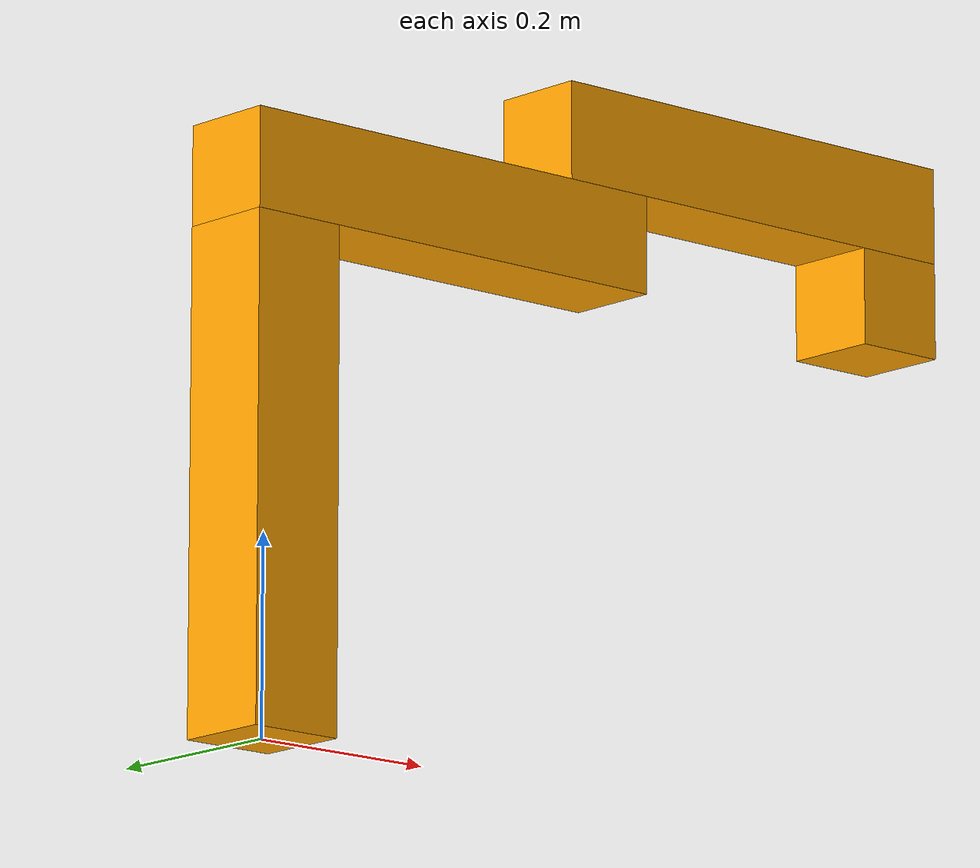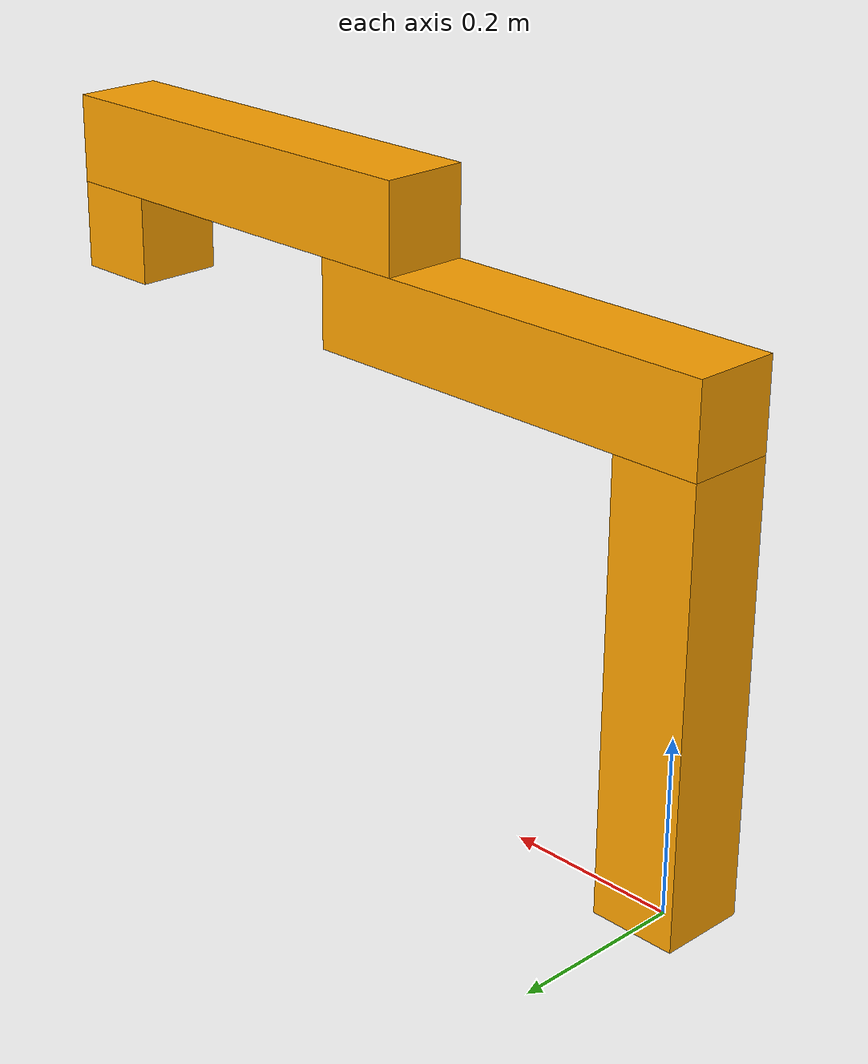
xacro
<?xml version="1.0"?>
<robot name="robot" xmlns:xacro="http://ros.org/wiki/xacro">

  <xacro:property name="height1" value="0.5" />
  <xacro:property name="height2" value="0.5" />
  <xacro:property name="height3" value="0.5" />
  <xacro:property name="length" value="0.1" />
  <xacro:property name="width" value="0.1" />
  <xacro:property name="mass" value="1" />
  <xacro:property name="axel_offset" value="0.05" />
  <xacro:property name="leglen" value="0.6" />
  <xacro:property name="polelen" value="0.2" />
  <xacro:property name="bodylen" value="0.6" />
  <xacro:property name="baselen" value="0.4" />
  <xacro:property name="wheeldiam" value="0.07" />
  <xacro:property name="pi" value="3.1415" />
  <xacro:include filename="$(find rbe500_group)/urdf/robot_color.gazebo" />

  <material name="blue">
    <color rgba="0 0 0.8 1"/>
  </material>

  <material name="red">
    <color rgba="1 0 0 1"/>
  </material>

  <material name="">
    <color rgba="1 0 0 1"/>
  </material>

  <material name="green">
    <color rgba="0 1 0 1"/>
  </material>

  <material name="orange">
    <color rgba="1 0.64 0 1"/>
  </material>

  <material name="black">
    <color rgba="0 0 0 1"/>
  </material>

  <material name="white">
    <color rgba="1 1 1 1"/>
  </material>

  <link name="world"/>

  <joint name="joint0" type="continuous">
    <parent link="world"/>
    <child link="link1"/>
    <axis xyz="0 0 1"/>
    <dynamics damping="0.7"/>
  </joint>

  <link name="link1">
    <collision>
      <origin xyz="0 0 ${height1/2}" rpy="0 0 0"/>
      <geometry>
	<box size="${width} ${width} ${height1}"/>
      </geometry>
    </collision>

    <visual>
      <origin xyz="0 0 ${height1/2}" rpy="0 0 0"/>
      <geometry>
	<box size="${width} ${width} ${height1}"/>
      </geometry>
      <material name="orange"/>
    </visual>

    <inertial>
      <origin xyz="0 0 ${height1/2}" rpy="0 0 0"/>
      <mass value="${mass}"/>
      <inertia
	  ixx="${mass / 12.0 * (width*width + height1*height1)}" ixy="0.0" ixz="0.0"
	  iyy="${mass / 12.0 * (height1*height1 + width*width)}" iyz="0.0"
	  izz="${mass / 12.0 * (width*width + width*width)}"/>
    </inertial>
  </link>

<joint name="joint1" type="fixed">
    <parent link="link1"/>
    <child link="link2"/>
    <origin xyz="0 0 ${height1 + axel_offset}" rpy="0 1.5708 0"/>
    <axis xyz="1 0 0"/>
    <dynamics damping="0.7"/>
  </joint>

  <!-- Link 2-->
  <link name="link2">
    <collision>
      <origin xyz="0 0 ${height2/2 - axel_offset}" rpy="0 0 0"/>
      <geometry>
	<box size="${width} ${width} ${height2}"/>
      </geometry>
    </collision>

    <visual>
      <origin xyz="0 0 ${height2/2 - axel_offset}" rpy="0 0 0"/>
      <geometry>
	<box size="${width} ${width} ${height2}"/>
      </geometry>
      <material name="orange"/>
    </visual>

    <inertial>
      <origin xyz="0 0 ${height2/2 - axel_offset}" rpy="0 0 0"/>
      <mass value="${mass}"/>
      <inertia
	  ixx="${mass / 12.0 * (width*width + height2*height2)}" ixy="0.0" ixz="0.0"
	  iyy="${mass / 12.0 * (height2*height2 + width*width)}" iyz="0.0"
	  izz="${mass / 12.0 * (width*width + width*width)}"/>
    </inertial>
  </link>

  <joint name="joint2" type="continuous">
    <parent link="link2"/>
    <child link="link3"/>
    <origin xyz="-${width} 0 ${height2-axel_offset*2}" rpy="0 0 0"/>
    <axis xyz="1 0 0"/>
    <dynamics damping="0.7"/>
  </joint>

  <!-- Link 3-->
  <link name="link3">
    <collision>
      <origin xyz="0 0 ${height2/2 - axel_offset}" rpy="0 0 0"/>
      <geometry>
	<box size="${width} ${width} ${height2}"/>
      </geometry>
    </collision>

    <visual>
      <origin xyz="0 0 ${height2/2 - axel_offset}" rpy="0 0 0"/>
      <geometry>
	<box size="${width} ${width} ${height2}"/>
      </geometry>
      <material name="orange"/>
    </visual>

    <inertial>
      <origin xyz="0 0 ${height2/2 - axel_offset}" rpy="0 0 0"/>
      <mass value="${mass}"/>
      <inertia
	  ixx="${mass / 12.0 * (width*width + height2*height2)}" ixy="0.0" ixz="0.0"
	  iyy="${mass / 12.0 * (height2*height2 + width*width)}" iyz="0.0"
	  izz="${mass / 12.0 * (width*width + width*width)}"/>
    </inertial>
  </link>

  <joint name="joint3" type="prismatic">
    <parent link="link3"/>
    <child link="link4"/>
    <origin xyz="${width} 0 ${height1-axel_offset*2}" rpy="0 0 0"/>
    <limit effort="30" velocity="1.0" lower="0" upper="${height1/2}" />
    <axis xyz="1 0 0"/>
    <dynamics damping="0.7"/>
  </joint>

  <!-- Link 4-->
  <link name="link4">
    <collision>
      <origin xyz="0 0 ${width/2 - axel_offset}" rpy="0 0 0"/>
      <geometry>
	<box size="${width} ${width} ${width}"/>
      </geometry>
    </collision>

    <visual>
      <origin xyz="0 0 ${width/2 - axel_offset}" rpy="0 0 0"/>
      <geometry>
	<box size="${width} ${width} ${width}"/>
      </geometry>
      <material name="orange"/>
    </visual>

    <inertial>
      <origin xyz="0 0 ${width/2 - axel_offset}" rpy="0 0 0"/>
      <mass value="${mass}"/>
      <inertia
	  ixx="${mass / 12.0 * (width*width + width*width)}" ixy="0.0" ixz="0.0"
	  iyy="${mass / 12.0 * (width*width + width*width)}" iyz="0.0"
	  izz="${mass / 12.0 * (width*width + width*width)}"/>
    </inertial>
  </link>

<transmission name="tran1">
    <type>transmission_interface/SimpleTransmission</type>
    <joint name="joint0">
      <hardwareInterface>hardware_interface/VelocityJointInterface</hardwareInterface>
    </joint>
    <actuator name="motor1">
      <hardwareInterface>hardware_interface/VelocityJointInterface</hardwareInterface>
      <mechanicalReduction>1</mechanicalReduction>
    </actuator>
  </transmission>

  <transmission name="tran2">
    <type>transmission_interface/SimpleTransmission</type>
    <joint name="joint2">
      <hardwareInterface>hardware_interface/VelocityJointInterface</hardwareInterface>
    </joint>
    <actuator name="motor2">
      <hardwareInterface>hardware_interface/VelocityJointInterface</hardwareInterface>
      <mechanicalReduction>1</mechanicalReduction>
    </actuator>
  </transmission>

    <transmission name="tran3">
    <type>transmission_interface/SimpleTransmission</type>
    <joint name="joint3">
      <hardwareInterface>hardware_interface/VelocityJointInterface</hardwareInterface>
    </joint>
    <actuator name="piston1">
      <hardwareInterface>hardware_interface/VelocityJointInterface</hardwareInterface>
      <mechanicalReduction>1</mechanicalReduction>
    </actuator>
  </transmission>
  </robot>
